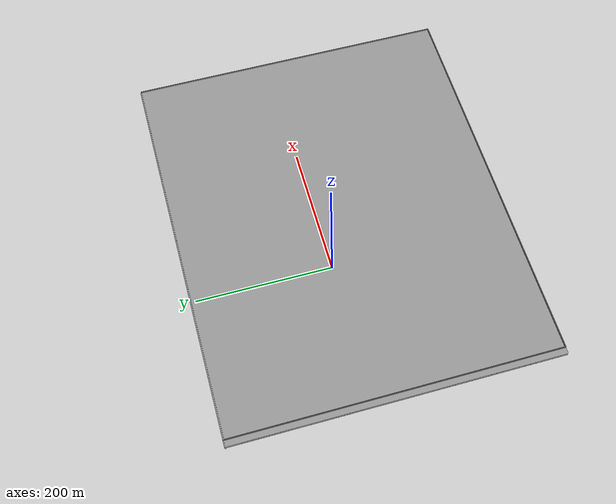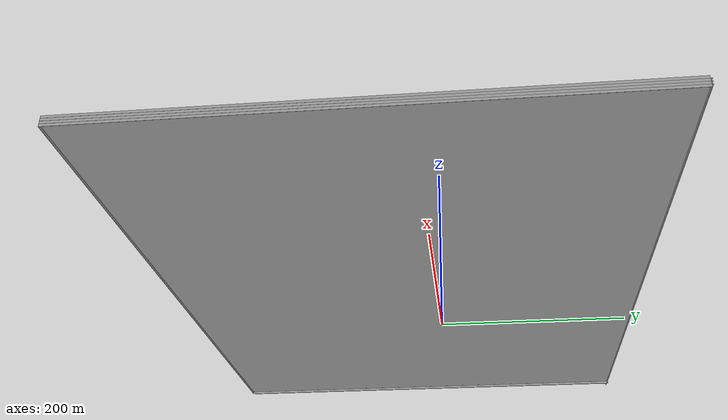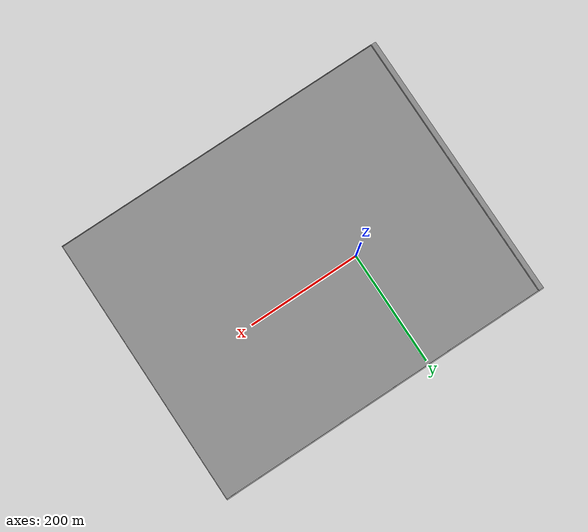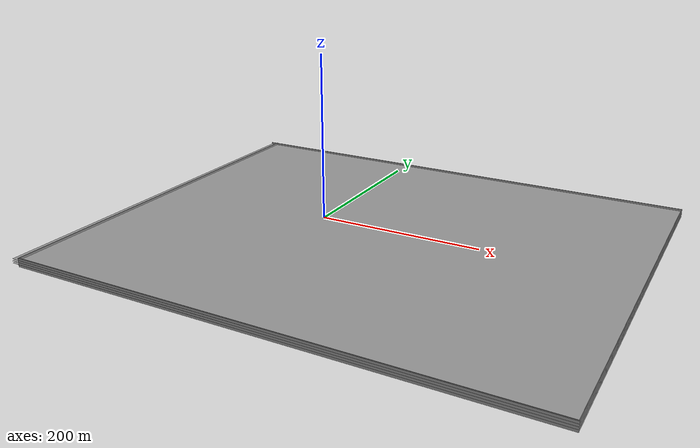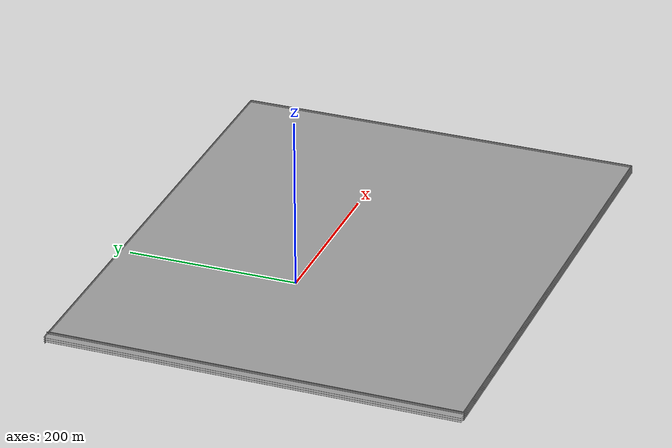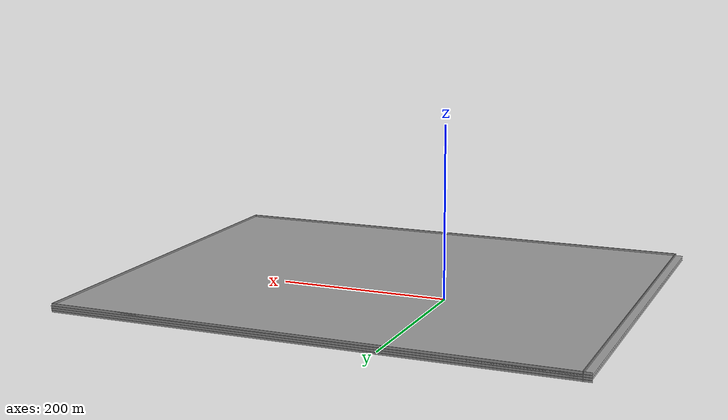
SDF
<?xml version='1.0'?>
<sdf version='1.6'>
  <model name='4floor'>
    <pose frame=''>81.2725 -32.2043 0 0 -0 0</pose>
    <link name='Floor_1'>
      <collision name='Floor_1_Collision'>
        <geometry>
          <box>
            <size>602.75 480.5 0.1</size>
          </box>
        </geometry>
        <pose frame=''>0 0 0.05 0 -0 0</pose>
      </collision>
      <visual name='Floor_1_Visual'>
        <pose frame=''>0 0 0.05 0 -0 0</pose>
        <geometry>
          <box>
            <size>602.75 480.5 0.1</size>
          </box>
        </geometry>
        <material>
          <script>
            <uri>file://media/materials/scripts/gazebo.material</uri>
            <name>Gazebo/Grey</name>
          </script>
          <ambient>1 1 1 1</ambient>
        </material>
        <meta>
          <layer>1</layer>
        </meta>
      </visual>
      <pose frame=''>-1.5e-05 8e-06 2.5 0 -0 0</pose>
    </link>
    <link name='Floor_2'>
      <collision name='Floor_2_Collision'>
        <geometry>
          <box>
            <size>602.75 480.5 0.1</size>
          </box>
        </geometry>
        <pose frame=''>0 0 0.05 0 -0 0</pose>
      </collision>
      <visual name='Floor_2_Visual'>
        <pose frame=''>0 0 0.05 0 -0 0</pose>
        <geometry>
          <box>
            <size>602.75 480.5 0.1</size>
          </box>
        </geometry>
        <material>
          <script>
            <uri>file://media/materials/scripts/gazebo.material</uri>
            <name>Gazebo/Grey</name>
          </script>
          <ambient>1 1 1 1</ambient>
        </material>
        <meta>
          <layer>2</layer>
        </meta>
      </visual>
      <pose frame=''>-1.5e-05 8e-06 5 0 -0 0</pose>
    </link>
    <link name='Floor_3'>
      <collision name='Floor_3_Collision'>
        <geometry>
          <box>
            <size>602.75 480.5 0.1</size>
          </box>
        </geometry>
        <pose frame=''>0 0 0.05 0 -0 0</pose>
      </collision>
      <visual name='Floor_3_Visual'>
        <pose frame=''>0 0 0.05 0 -0 0</pose>
        <geometry>
          <box>
            <size>602.75 480.5 0.1</size>
          </box>
        </geometry>
        <material>
          <script>
            <uri>file://media/materials/scripts/gazebo.material</uri>
            <name>Gazebo/Grey</name>
          </script>
          <ambient>1 1 1 1</ambient>
        </material>
        <meta>
          <layer>3</layer>
        </meta>
      </visual>
      <pose frame=''>-2.3e-05 8e-06 7.5 0 -0 0</pose>
    </link>
    <link name='Wall_11'>
      <collision name='Wall_11_Collision'>
        <geometry>
          <box>
            <size>602.75 0.15 2.5</size>
          </box>
        </geometry>
        <pose frame=''>0 0 1.25 0 -0 0</pose>
      </collision>
      <visual name='Wall_11_Visual'>
        <pose frame=''>0 0 1.25 0 -0 0</pose>
        <geometry>
          <box>
            <size>602.75 0.15 2.5</size>
          </box>
        </geometry>
        <material>
          <script>
            <uri>file://media/materials/scripts/gazebo.material</uri>
            <name>Gazebo/Grey</name>
          </script>
          <ambient>1 1 1 1</ambient>
        </material>
        <meta>
          <layer>0</layer>
        </meta>
      </visual>
      <pose frame=''>-1.5e-05 238.675 0 0 -0 0</pose>
    </link>
    <link name='Wall_12'>
      <collision name='Wall_12_Collision'>
        <geometry>
          <box>
            <size>479 0.15 2.5</size>
          </box>
        </geometry>
        <pose frame=''>0 0 1.25 0 -0 0</pose>
      </collision>
      <visual name='Wall_12_Visual'>
        <pose frame=''>0 0 1.25 0 -0 0</pose>
        <geometry>
          <box>
            <size>479 0.15 2.5</size>
          </box>
        </geometry>
        <material>
          <script>
            <uri>file://media/materials/scripts/gazebo.material</uri>
            <name>Gazebo/Grey</name>
          </script>
          <ambient>1 1 1 1</ambient>
        </material>
        <meta>
          <layer>0</layer>
        </meta>
      </visual>
      <pose frame=''>301.3 -0.749992 0 0 -0 -1.5708</pose>
    </link>
    <link name='Wall_13'>
      <collision name='Wall_13_Collision'>
        <geometry>
          <box>
            <size>594 0.15 2.5</size>
          </box>
        </geometry>
        <pose frame=''>0 0 1.25 0 -0 0</pose>
      </collision>
      <visual name='Wall_13_Visual'>
        <pose frame=''>0 0 1.25 0 -0 0</pose>
        <geometry>
          <box>
            <size>594 0.15 2.5</size>
          </box>
        </geometry>
        <material>
          <script>
            <uri>file://media/materials/scripts/gazebo.material</uri>
            <name>Gazebo/Grey</name>
          </script>
          <ambient>1 1 1 1</ambient>
        </material>
        <meta>
          <layer>0</layer>
        </meta>
      </visual>
      <pose frame=''>4.37498 -240.175 0 0 -0 3.14159</pose>
    </link>
    <link name='Wall_14'>
      <collision name='Wall_14_Collision'>
        <geometry>
          <box>
            <size>480.5 0.15 2.5</size>
          </box>
        </geometry>
        <pose frame=''>0 0 1.25 0 -0 0</pose>
      </collision>
      <visual name='Wall_14_Visual'>
        <pose frame=''>0 0 1.25 0 -0 0</pose>
        <geometry>
          <box>
            <size>480.5 0.15 2.5</size>
          </box>
        </geometry>
        <material>
          <script>
            <uri>file://media/materials/scripts/gazebo.material</uri>
            <name>Gazebo/Grey</name>
          </script>
          <ambient>1 1 1 1</ambient>
        </material>
        <meta>
          <layer>0</layer>
        </meta>
      </visual>
      <pose frame=''>-292.55 8e-06 0 0 -0 1.5708</pose>
    </link>
    <link name='Wall_16'>
      <collision name='Wall_16_Collision'>
        <geometry>
          <box>
            <size>602.75 0.15 2.5</size>
          </box>
        </geometry>
        <pose frame=''>0 0 1.25 0 -0 0</pose>
      </collision>
      <visual name='Wall_16_Visual'>
        <pose frame=''>0 0 1.25 0 -0 0</pose>
        <geometry>
          <box>
            <size>602.75 0.15 2.5</size>
          </box>
        </geometry>
        <material>
          <script>
            <uri>file://media/materials/scripts/gazebo.material</uri>
            <name>Gazebo/Grey</name>
          </script>
          <ambient>1 1 1 1</ambient>
        </material>
        <meta>
          <layer>1</layer>
        </meta>
      </visual>
      <pose frame=''>-2.3e-05 238.675 2.5 0 -0 0</pose>
    </link>
    <link name='Wall_17'>
      <collision name='Wall_17_Collision'>
        <geometry>
          <box>
            <size>479 0.15 2.5</size>
          </box>
        </geometry>
        <pose frame=''>0 0 1.25 0 -0 0</pose>
      </collision>
      <visual name='Wall_17_Visual'>
        <pose frame=''>0 0 1.25 0 -0 0</pose>
        <geometry>
          <box>
            <size>479 0.15 2.5</size>
          </box>
        </geometry>
        <material>
          <script>
            <uri>file://media/materials/scripts/gazebo.material</uri>
            <name>Gazebo/Grey</name>
          </script>
          <ambient>1 1 1 1</ambient>
        </material>
        <meta>
          <layer>1</layer>
        </meta>
      </visual>
      <pose frame=''>301.3 -0.749992 2.5 0 -0 -1.5708</pose>
    </link>
    <link name='Wall_18'>
      <collision name='Wall_18_Collision'>
        <geometry>
          <box>
            <size>594 0.15 2.5</size>
          </box>
        </geometry>
        <pose frame=''>0 0 1.25 0 -0 0</pose>
      </collision>
      <visual name='Wall_18_Visual'>
        <pose frame=''>0 0 1.25 0 -0 0</pose>
        <geometry>
          <box>
            <size>594 0.15 2.5</size>
          </box>
        </geometry>
        <material>
          <script>
            <uri>file://media/materials/scripts/gazebo.material</uri>
            <name>Gazebo/Grey</name>
          </script>
          <ambient>1 1 1 1</ambient>
        </material>
        <meta>
          <layer>1</layer>
        </meta>
      </visual>
      <pose frame=''>4.37498 -240.175 2.5 0 -0 3.14159</pose>
    </link>
    <link name='Wall_19'>
      <collision name='Wall_19_Collision'>
        <geometry>
          <box>
            <size>480.5 0.15 2.5</size>
          </box>
        </geometry>
        <pose frame=''>0 0 1.25 0 -0 0</pose>
      </collision>
      <visual name='Wall_19_Visual'>
        <pose frame=''>0 0 1.25 0 -0 0</pose>
        <geometry>
          <box>
            <size>480.5 0.15 2.5</size>
          </box>
        </geometry>
        <material>
          <script>
            <uri>file://media/materials/scripts/gazebo.material</uri>
            <name>Gazebo/Grey</name>
          </script>
          <ambient>1 1 1 1</ambient>
        </material>
        <meta>
          <layer>1</layer>
        </meta>
      </visual>
      <pose frame=''>-292.55 8e-06 2.5 0 -0 1.5708</pose>
    </link>
    <link name='Wall_20'>
      <collision name='Wall_20_Collision'>
        <geometry>
          <box>
            <size>592.5 0.15 2.5</size>
          </box>
        </geometry>
        <pose frame=''>0 0 1.25 0 -0 0</pose>
      </collision>
      <visual name='Wall_20_Visual'>
        <pose frame=''>0 0 1.25 0 -0 0</pose>
        <geometry>
          <box>
            <size>592.5 0.15 2.5</size>
          </box>
        </geometry>
        <material>
          <script>
            <uri>file://media/materials/scripts/gazebo.material</uri>
            <name>Gazebo/Grey</name>
          </script>
          <ambient>1 1 1 1</ambient>
        </material>
        <meta>
          <layer>1</layer>
        </meta>
      </visual>
      <pose frame=''>4.56012 238.675 2.5 0 -0 0</pose>
    </link>
    <link name='Wall_21'>
      <collision name='Wall_21_Collision'>
        <geometry>
          <box>
            <size>477.25 0.15 2.5</size>
          </box>
        </geometry>
        <pose frame=''>0 0 1.25 0 -0 0</pose>
      </collision>
      <visual name='Wall_21_Visual'>
        <pose frame=''>0 0 1.25 0 -0 0</pose>
        <geometry>
          <box>
            <size>477.25 0.15 2.5</size>
          </box>
        </geometry>
        <material>
          <script>
            <uri>file://media/materials/scripts/gazebo.material</uri>
            <name>Gazebo/Grey</name>
          </script>
          <ambient>1 1 1 1</ambient>
        </material>
        <meta>
          <layer>1</layer>
        </meta>
      </visual>
      <pose frame=''>300.735 0.125008 2.5 0 -0 -1.5708</pose>
    </link>
    <link name='Wall_22'>
      <collision name='Wall_22_Collision'>
        <geometry>
          <box>
            <size>2.25 0.15 2.5</size>
          </box>
        </geometry>
        <pose frame=''>0 0 1.25 0 -0 0</pose>
      </collision>
      <visual name='Wall_22_Visual'>
        <pose frame=''>0 0 1.25 0 -0 0</pose>
        <geometry>
          <box>
            <size>2.25 0.15 2.5</size>
          </box>
        </geometry>
        <material>
          <script>
            <uri>file://media/materials/scripts/gazebo.material</uri>
            <name>Gazebo/Grey</name>
          </script>
          <ambient>1 1 1 1</ambient>
        </material>
        <meta>
          <layer>1</layer>
        </meta>
      </visual>
      <pose frame=''>299.993 -239.167 2.5 0 -0 -2.35619</pose>
    </link>
    <link name='Wall_23'>
      <collision name='Wall_23_Collision'>
        <geometry>
          <box>
            <size>591.5 0.15 2.5</size>
          </box>
        </geometry>
        <pose frame=''>0 0 1.25 0 -0 0</pose>
      </collision>
      <visual name='Wall_23_Visual'>
        <pose frame=''>0 0 1.25 0 -0 0</pose>
        <geometry>
          <box>
            <size>591.5 0.15 2.5</size>
          </box>
        </geometry>
        <material>
          <script>
            <uri>file://media/materials/scripts/gazebo.material</uri>
            <name>Gazebo/Grey</name>
          </script>
          <ambient>1 1 1 1</ambient>
        </material>
        <meta>
          <layer>1</layer>
        </meta>
      </visual>
      <pose frame=''>3.57519 -239.91 2.5 0 -0 3.14159</pose>
    </link>
    <link name='Wall_24'>
      <collision name='Wall_24_Collision'>
        <geometry>
          <box>
            <size>478.735 0.15 2.5</size>
          </box>
        </geometry>
        <pose frame=''>0 0 1.25 0 -0 0</pose>
      </collision>
      <visual name='Wall_24_Visual'>
        <pose frame=''>0 0 1.25 0 -0 0</pose>
        <geometry>
          <box>
            <size>478.735 0.15 2.5</size>
          </box>
        </geometry>
        <material>
          <script>
            <uri>file://media/materials/scripts/gazebo.material</uri>
            <name>Gazebo/Grey</name>
          </script>
          <ambient>1 1 1 1</ambient>
        </material>
        <meta>
          <layer>1</layer>
        </meta>
      </visual>
      <pose frame=''>-291.857 -0.617455 2.5 0 -0 1.56978</pose>
    </link>
    <link name='Wall_26'>
      <collision name='Wall_26_Collision'>
        <geometry>
          <box>
            <size>602.75 0.15 2.5</size>
          </box>
        </geometry>
        <pose frame=''>0 0 1.25 0 -0 0</pose>
      </collision>
      <visual name='Wall_26_Visual'>
        <pose frame=''>0 0 1.25 0 -0 0</pose>
        <geometry>
          <box>
            <size>602.75 0.15 2.5</size>
          </box>
        </geometry>
        <material>
          <script>
            <uri>file://media/materials/scripts/gazebo.material</uri>
            <name>Gazebo/Grey</name>
          </script>
          <ambient>1 1 1 1</ambient>
        </material>
        <meta>
          <layer>2</layer>
        </meta>
      </visual>
      <pose frame=''>-2.3e-05 238.675 5 0 -0 0</pose>
    </link>
    <link name='Wall_27'>
      <collision name='Wall_27_Collision'>
        <geometry>
          <box>
            <size>479 0.15 2.5</size>
          </box>
        </geometry>
        <pose frame=''>0 0 1.25 0 -0 0</pose>
      </collision>
      <visual name='Wall_27_Visual'>
        <pose frame=''>0 0 1.25 0 -0 0</pose>
        <geometry>
          <box>
            <size>479 0.15 2.5</size>
          </box>
        </geometry>
        <material>
          <script>
            <uri>file://media/materials/scripts/gazebo.material</uri>
            <name>Gazebo/Grey</name>
          </script>
          <ambient>1 1 1 1</ambient>
        </material>
        <meta>
          <layer>2</layer>
        </meta>
      </visual>
      <pose frame=''>301.3 -0.749992 5 0 -0 -1.5708</pose>
    </link>
    <link name='Wall_28'>
      <collision name='Wall_28_Collision'>
        <geometry>
          <box>
            <size>594 0.15 2.5</size>
          </box>
        </geometry>
        <pose frame=''>0 0 1.25 0 -0 0</pose>
      </collision>
      <visual name='Wall_28_Visual'>
        <pose frame=''>0 0 1.25 0 -0 0</pose>
        <geometry>
          <box>
            <size>594 0.15 2.5</size>
          </box>
        </geometry>
        <material>
          <script>
            <uri>file://media/materials/scripts/gazebo.material</uri>
            <name>Gazebo/Grey</name>
          </script>
          <ambient>1 1 1 1</ambient>
        </material>
        <meta>
          <layer>2</layer>
        </meta>
      </visual>
      <pose frame=''>4.37498 -240.175 5 0 -0 3.14159</pose>
    </link>
    <link name='Wall_29'>
      <collision name='Wall_29_Collision'>
        <geometry>
          <box>
            <size>480.5 0.15 2.5</size>
          </box>
        </geometry>
        <pose frame=''>0 0 1.25 0 -0 0</pose>
      </collision>
      <visual name='Wall_29_Visual'>
        <pose frame=''>0 0 1.25 0 -0 0</pose>
        <geometry>
          <box>
            <size>480.5 0.15 2.5</size>
          </box>
        </geometry>
        <material>
          <script>
            <uri>file://media/materials/scripts/gazebo.material</uri>
            <name>Gazebo/Grey</name>
          </script>
          <ambient>1 1 1 1</ambient>
        </material>
        <meta>
          <layer>2</layer>
        </meta>
      </visual>
      <pose frame=''>-292.55 8e-06 5 0 -0 1.5708</pose>
    </link>
    <link name='Wall_30'>
      <collision name='Wall_30_Collision'>
        <geometry>
          <box>
            <size>592.5 0.15 2.5</size>
          </box>
        </geometry>
        <pose frame=''>0 0 1.25 0 -0 0</pose>
      </collision>
      <visual name='Wall_30_Visual'>
        <pose frame=''>0 0 1.25 0 -0 0</pose>
        <geometry>
          <box>
            <size>592.5 0.15 2.5</size>
          </box>
        </geometry>
        <material>
          <script>
            <uri>file://media/materials/scripts/gazebo.material</uri>
            <name>Gazebo/Grey</name>
          </script>
          <ambient>1 1 1 1</ambient>
        </material>
        <meta>
          <layer>2</layer>
        </meta>
      </visual>
      <pose frame=''>4.56012 238.675 5 0 -0 0</pose>
    </link>
    <link name='Wall_31'>
      <collision name='Wall_31_Collision'>
        <geometry>
          <box>
            <size>477.25 0.15 2.5</size>
          </box>
        </geometry>
        <pose frame=''>0 0 1.25 0 -0 0</pose>
      </collision>
      <visual name='Wall_31_Visual'>
        <pose frame=''>0 0 1.25 0 -0 0</pose>
        <geometry>
          <box>
            <size>477.25 0.15 2.5</size>
          </box>
        </geometry>
        <material>
          <script>
            <uri>file://media/materials/scripts/gazebo.material</uri>
            <name>Gazebo/Grey</name>
          </script>
          <ambient>1 1 1 1</ambient>
        </material>
        <meta>
          <layer>2</layer>
        </meta>
      </visual>
      <pose frame=''>300.735 0.125008 5 0 -0 -1.5708</pose>
    </link>
    <link name='Wall_32'>
      <collision name='Wall_32_Collision'>
        <geometry>
          <box>
            <size>2.25 0.15 2.5</size>
          </box>
        </geometry>
        <pose frame=''>0 0 1.25 0 -0 0</pose>
      </collision>
      <visual name='Wall_32_Visual'>
        <pose frame=''>0 0 1.25 0 -0 0</pose>
        <geometry>
          <box>
            <size>2.25 0.15 2.5</size>
          </box>
        </geometry>
        <material>
          <script>
            <uri>file://media/materials/scripts/gazebo.material</uri>
            <name>Gazebo/Grey</name>
          </script>
          <ambient>1 1 1 1</ambient>
        </material>
        <meta>
          <layer>2</layer>
        </meta>
      </visual>
      <pose frame=''>299.993 -239.167 5 0 -0 -2.35619</pose>
    </link>
    <link name='Wall_33'>
      <collision name='Wall_33_Collision'>
        <geometry>
          <box>
            <size>591.5 0.15 2.5</size>
          </box>
        </geometry>
        <pose frame=''>0 0 1.25 0 -0 0</pose>
      </collision>
      <visual name='Wall_33_Visual'>
        <pose frame=''>0 0 1.25 0 -0 0</pose>
        <geometry>
          <box>
            <size>591.5 0.15 2.5</size>
          </box>
        </geometry>
        <material>
          <script>
            <uri>file://media/materials/scripts/gazebo.material</uri>
            <name>Gazebo/Grey</name>
          </script>
          <ambient>1 1 1 1</ambient>
        </material>
        <meta>
          <layer>2</layer>
        </meta>
      </visual>
      <pose frame=''>3.57519 -239.91 5 0 -0 3.14159</pose>
    </link>
    <link name='Wall_34'>
      <collision name='Wall_34_Collision'>
        <geometry>
          <box>
            <size>478.735 0.15 2.5</size>
          </box>
        </geometry>
        <pose frame=''>0 0 1.25 0 -0 0</pose>
      </collision>
      <visual name='Wall_34_Visual'>
        <pose frame=''>0 0 1.25 0 -0 0</pose>
        <geometry>
          <box>
            <size>478.735 0.15 2.5</size>
          </box>
        </geometry>
        <material>
          <script>
            <uri>file://media/materials/scripts/gazebo.material</uri>
            <name>Gazebo/Grey</name>
          </script>
          <ambient>1 1 1 1</ambient>
        </material>
        <meta>
          <layer>2</layer>
        </meta>
      </visual>
      <pose frame=''>-291.857 -0.617455 5 0 -0 1.56978</pose>
    </link>
    <link name='Wall_35'>
      <collision name='Wall_35_Collision'>
        <geometry>
          <box>
            <size>593.5 0.15 2.5</size>
          </box>
        </geometry>
        <pose frame=''>0 0 1.25 0 -0 0</pose>
      </collision>
      <visual name='Wall_35_Visual'>
        <pose frame=''>0 0 1.25 0 -0 0</pose>
        <geometry>
          <box>
            <size>593.5 0.15 2.5</size>
          </box>
        </geometry>
        <material>
          <script>
            <uri>file://media/materials/scripts/gazebo.material</uri>
            <name>Gazebo/Grey</name>
          </script>
          <ambient>1 1 1 1</ambient>
        </material>
        <meta>
          <layer>2</layer>
        </meta>
      </visual>
      <pose frame=''>3.98399 238.137 5 0 -0 0</pose>
    </link>
    <link name='Wall_36'>
      <collision name='Wall_36_Collision'>
        <geometry>
          <box>
            <size>477.25 0.15 2.5</size>
          </box>
        </geometry>
        <pose frame=''>0 0 1.25 0 -0 0</pose>
      </collision>
      <visual name='Wall_36_Visual'>
        <pose frame=''>0 0 1.25 0 -0 0</pose>
        <geometry>
          <box>
            <size>477.25 0.15 2.5</size>
          </box>
        </geometry>
        <material>
          <script>
            <uri>file://media/materials/scripts/gazebo.material</uri>
            <name>Gazebo/Grey</name>
          </script>
          <ambient>1 1 1 1</ambient>
        </material>
        <meta>
          <layer>2</layer>
        </meta>
      </visual>
      <pose frame=''>300.659 -0.413055 5 0 -0 -1.5708</pose>
    </link>
    <link name='Wall_37'>
      <collision name='Wall_37_Collision'>
        <geometry>
          <box>
            <size>592.25 0.15 2.5</size>
          </box>
        </geometry>
        <pose frame=''>0 0 1.25 0 -0 0</pose>
      </collision>
      <visual name='Wall_37_Visual'>
        <pose frame=''>0 0 1.25 0 -0 0</pose>
        <geometry>
          <box>
            <size>592.25 0.15 2.5</size>
          </box>
        </geometry>
        <material>
          <script>
            <uri>file://media/materials/scripts/gazebo.material</uri>
            <name>Gazebo/Grey</name>
          </script>
          <ambient>1 1 1 1</ambient>
        </material>
        <meta>
          <layer>2</layer>
        </meta>
      </visual>
      <pose frame=''>4.60899 -238.963 5 0 -0 3.14159</pose>
    </link>
    <link name='Wall_38'>
      <collision name='Wall_38_Collision'>
        <geometry>
          <box>
            <size>477.75 0.15 2.5</size>
          </box>
        </geometry>
        <pose frame=''>0 0 1.25 0 -0 0</pose>
      </collision>
      <visual name='Wall_38_Visual'>
        <pose frame=''>0 0 1.25 0 -0 0</pose>
        <geometry>
          <box>
            <size>477.75 0.15 2.5</size>
          </box>
        </geometry>
        <material>
          <script>
            <uri>file://media/materials/scripts/gazebo.material</uri>
            <name>Gazebo/Grey</name>
          </script>
          <ambient>1 1 1 1</ambient>
        </material>
        <meta>
          <layer>2</layer>
        </meta>
      </visual>
      <pose frame=''>-291.441 -0.163055 5 0 -0 1.5708</pose>
    </link>
    <link name='Wall_40'>
      <collision name='Wall_40_Collision'>
        <geometry>
          <box>
            <size>602.75 0.15 2.5</size>
          </box>
        </geometry>
        <pose frame=''>0 0 1.25 0 -0 0</pose>
      </collision>
      <visual name='Wall_40_Visual'>
        <pose frame=''>0 0 1.25 0 -0 0</pose>
        <geometry>
          <box>
            <size>602.75 0.15 2.5</size>
          </box>
        </geometry>
        <material>
          <script>
            <uri>file://media/materials/scripts/gazebo.material</uri>
            <name>Gazebo/Grey</name>
          </script>
          <ambient>1 1 1 1</ambient>
        </material>
        <meta>
          <layer>3</layer>
        </meta>
      </visual>
      <pose frame=''>-2.3e-05 238.675 7.5 0 -0 0</pose>
    </link>
    <link name='Wall_41'>
      <collision name='Wall_41_Collision'>
        <geometry>
          <box>
            <size>479 0.15 2.5</size>
          </box>
        </geometry>
        <pose frame=''>0 0 1.25 0 -0 0</pose>
      </collision>
      <visual name='Wall_41_Visual'>
        <pose frame=''>0 0 1.25 0 -0 0</pose>
        <geometry>
          <box>
            <size>479 0.15 2.5</size>
          </box>
        </geometry>
        <material>
          <script>
            <uri>file://media/materials/scripts/gazebo.material</uri>
            <name>Gazebo/Grey</name>
          </script>
          <ambient>1 1 1 1</ambient>
        </material>
        <meta>
          <layer>3</layer>
        </meta>
      </visual>
      <pose frame=''>301.3 -0.749992 7.5 0 -0 -1.5708</pose>
    </link>
    <link name='Wall_42'>
      <collision name='Wall_42_Collision'>
        <geometry>
          <box>
            <size>594 0.15 2.5</size>
          </box>
        </geometry>
        <pose frame=''>0 0 1.25 0 -0 0</pose>
      </collision>
      <visual name='Wall_42_Visual'>
        <pose frame=''>0 0 1.25 0 -0 0</pose>
        <geometry>
          <box>
            <size>594 0.15 2.5</size>
          </box>
        </geometry>
        <material>
          <script>
            <uri>file://media/materials/scripts/gazebo.material</uri>
            <name>Gazebo/Grey</name>
          </script>
          <ambient>1 1 1 1</ambient>
        </material>
        <meta>
          <layer>3</layer>
        </meta>
      </visual>
      <pose frame=''>4.37498 -240.175 7.5 0 -0 3.14159</pose>
    </link>
    <link name='Wall_43'>
      <collision name='Wall_43_Collision'>
        <geometry>
          <box>
            <size>480.5 0.15 2.5</size>
          </box>
        </geometry>
        <pose frame=''>0 0 1.25 0 -0 0</pose>
      </collision>
      <visual name='Wall_43_Visual'>
        <pose frame=''>0 0 1.25 0 -0 0</pose>
        <geometry>
          <box>
            <size>480.5 0.15 2.5</size>
          </box>
        </geometry>
        <material>
          <script>
            <uri>file://media/materials/scripts/gazebo.material</uri>
            <name>Gazebo/Grey</name>
          </script>
          <ambient>1 1 1 1</ambient>
        </material>
        <meta>
          <layer>3</layer>
        </meta>
      </visual>
      <pose frame=''>-292.55 8e-06 7.5 0 -0 1.5708</pose>
    </link>
    <link name='Wall_44'>
      <collision name='Wall_44_Collision'>
        <geometry>
          <box>
            <size>592.5 0.15 2.5</size>
          </box>
        </geometry>
        <pose frame=''>0 0 1.25 0 -0 0</pose>
      </collision>
      <visual name='Wall_44_Visual'>
        <pose frame=''>0 0 1.25 0 -0 0</pose>
        <geometry>
          <box>
            <size>592.5 0.15 2.5</size>
          </box>
        </geometry>
        <material>
          <script>
            <uri>file://media/materials/scripts/gazebo.material</uri>
            <name>Gazebo/Grey</name>
          </script>
          <ambient>1 1 1 1</ambient>
        </material>
        <meta>
          <layer>3</layer>
        </meta>
      </visual>
      <pose frame=''>4.56012 238.675 7.5 0 -0 0</pose>
    </link>
    <link name='Wall_45'>
      <collision name='Wall_45_Collision'>
        <geometry>
          <box>
            <size>477.25 0.15 2.5</size>
          </box>
        </geometry>
        <pose frame=''>0 0 1.25 0 -0 0</pose>
      </collision>
      <visual name='Wall_45_Visual'>
        <pose frame=''>0 0 1.25 0 -0 0</pose>
        <geometry>
          <box>
            <size>477.25 0.15 2.5</size>
          </box>
        </geometry>
        <material>
          <script>
            <uri>file://media/materials/scripts/gazebo.material</uri>
            <name>Gazebo/Grey</name>
          </script>
          <ambient>1 1 1 1</ambient>
        </material>
        <meta>
          <layer>3</layer>
        </meta>
      </visual>
      <pose frame=''>300.735 0.125008 7.5 0 -0 -1.5708</pose>
    </link>
    <link name='Wall_46'>
      <collision name='Wall_46_Collision'>
        <geometry>
          <box>
            <size>2.25 0.15 2.5</size>
          </box>
        </geometry>
        <pose frame=''>0 0 1.25 0 -0 0</pose>
      </collision>
      <visual name='Wall_46_Visual'>
        <pose frame=''>0 0 1.25 0 -0 0</pose>
        <geometry>
          <box>
            <size>2.25 0.15 2.5</size>
          </box>
        </geometry>
        <material>
          <script>
            <uri>file://media/materials/scripts/gazebo.material</uri>
            <name>Gazebo/Grey</name>
          </script>
          <ambient>1 1 1 1</ambient>
        </material>
        <meta>
          <layer>3</layer>
        </meta>
      </visual>
      <pose frame=''>299.993 -239.167 7.5 0 -0 -2.35619</pose>
    </link>
    <link name='Wall_47'>
      <collision name='Wall_47_Collision'>
        <geometry>
          <box>
            <size>591.5 0.15 2.5</size>
          </box>
        </geometry>
        <pose frame=''>0 0 1.25 0 -0 0</pose>
      </collision>
      <visual name='Wall_47_Visual'>
        <pose frame=''>0 0 1.25 0 -0 0</pose>
        <geometry>
          <box>
            <size>591.5 0.15 2.5</size>
          </box>
        </geometry>
        <material>
          <script>
            <uri>file://media/materials/scripts/gazebo.material</uri>
            <name>Gazebo/Grey</name>
          </script>
          <ambient>1 1 1 1</ambient>
        </material>
        <meta>
          <layer>3</layer>
        </meta>
      </visual>
      <pose frame=''>3.57519 -239.91 7.5 0 -0 3.14159</pose>
    </link>
    <link name='Wall_48'>
      <collision name='Wall_48_Collision'>
        <geometry>
          <box>
            <size>478.735 0.15 2.5</size>
          </box>
        </geometry>
        <pose frame=''>0 0 1.25 0 -0 0</pose>
      </collision>
      <visual name='Wall_48_Visual'>
        <pose frame=''>0 0 1.25 0 -0 0</pose>
        <geometry>
          <box>
            <size>478.735 0.15 2.5</size>
          </box>
        </geometry>
        <material>
          <script>
            <uri>file://media/materials/scripts/gazebo.material</uri>
            <name>Gazebo/Grey</name>
          </script>
          <ambient>1 1 1 1</ambient>
        </material>
        <meta>
          <layer>3</layer>
        </meta>
      </visual>
      <pose frame=''>-291.857 -0.617455 7.5 0 -0 1.56978</pose>
    </link>
    <link name='Wall_49'>
      <collision name='Wall_49_Collision'>
        <geometry>
          <box>
            <size>593.5 0.15 2.5</size>
          </box>
        </geometry>
        <pose frame=''>0 0 1.25 0 -0 0</pose>
      </collision>
      <visual name='Wall_49_Visual'>
        <pose frame=''>0 0 1.25 0 -0 0</pose>
        <geometry>
          <box>
            <size>593.5 0.15 2.5</size>
          </box>
        </geometry>
        <material>
          <script>
            <uri>file://media/materials/scripts/gazebo.material</uri>
            <name>Gazebo/Grey</name>
          </script>
          <ambient>1 1 1 1</ambient>
        </material>
        <meta>
          <layer>3</layer>
        </meta>
      </visual>
      <pose frame=''>3.98399 238.137 7.5 0 -0 0</pose>
    </link>
    <link name='Wall_50'>
      <collision name='Wall_50_Collision'>
        <geometry>
          <box>
            <size>477.25 0.15 2.5</size>
          </box>
        </geometry>
        <pose frame=''>0 0 1.25 0 -0 0</pose>
      </collision>
      <visual name='Wall_50_Visual'>
        <pose frame=''>0 0 1.25 0 -0 0</pose>
        <geometry>
          <box>
            <size>477.25 0.15 2.5</size>
          </box>
        </geometry>
        <material>
          <script>
            <uri>file://media/materials/scripts/gazebo.material</uri>
            <name>Gazebo/Grey</name>
          </script>
          <ambient>1 1 1 1</ambient>
        </material>
        <meta>
          <layer>3</layer>
        </meta>
      </visual>
      <pose frame=''>300.659 -0.413052 7.5 0 -0 -1.5708</pose>
    </link>
    <link name='Wall_51'>
      <collision name='Wall_51_Collision'>
        <geometry>
          <box>
            <size>592.25 0.15 2.5</size>
          </box>
        </geometry>
        <pose frame=''>0 0 1.25 0 -0 0</pose>
      </collision>
      <visual name='Wall_51_Visual'>
        <pose frame=''>0 0 1.25 0 -0 0</pose>
        <geometry>
          <box>
            <size>592.25 0.15 2.5</size>
          </box>
        </geometry>
        <material>
          <script>
            <uri>file://media/materials/scripts/gazebo.material</uri>
            <name>Gazebo/Grey</name>
          </script>
          <ambient>1 1 1 1</ambient>
        </material>
        <meta>
          <layer>3</layer>
        </meta>
      </visual>
      <pose frame=''>4.60899 -238.963 7.5 0 -0 3.14159</pose>
    </link>
    <link name='Wall_52'>
      <collision name='Wall_52_Collision'>
        <geometry>
          <box>
            <size>477.75 0.15 2.5</size>
          </box>
        </geometry>
        <pose frame=''>0 0 1.25 0 -0 0</pose>
      </collision>
      <visual name='Wall_52_Visual'>
        <pose frame=''>0 0 1.25 0 -0 0</pose>
        <geometry>
          <box>
            <size>477.75 0.15 2.5</size>
          </box>
        </geometry>
        <material>
          <script>
            <uri>file://media/materials/scripts/gazebo.material</uri>
            <name>Gazebo/Grey</name>
          </script>
          <ambient>1 1 1 1</ambient>
        </material>
        <meta>
          <layer>3</layer>
        </meta>
      </visual>
      <pose frame=''>-291.441 -0.163052 7.5 0 -0 1.5708</pose>
    </link>
    <static>1</static>
  </model>
</sdf>
